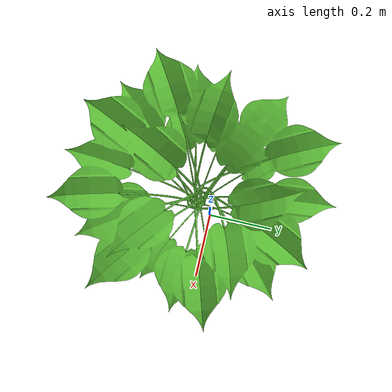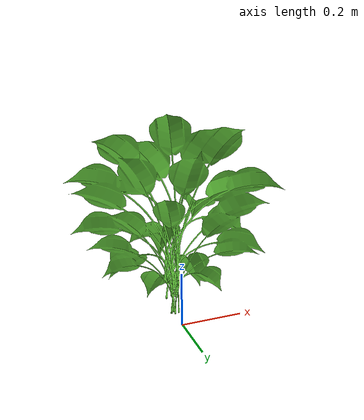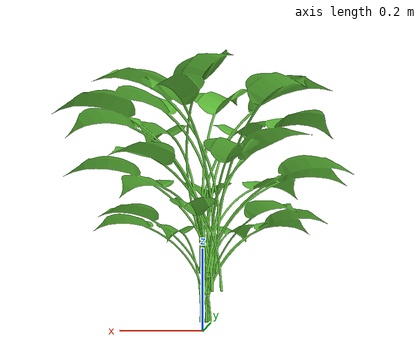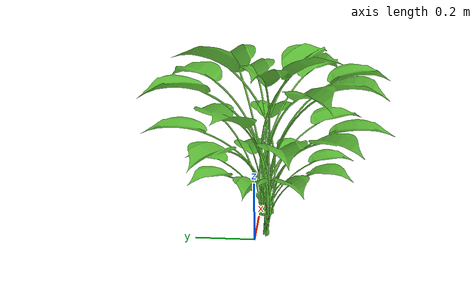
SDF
<?xml version='1.0'?>
<sdf version='1.6'>
  <model name='plant_1_single'>
    <link name='link_29'>
      <pose frame=''>-0.010565 -0.019137 0.004813 0 -0 1.12457</pose>
       <visual name='visual'>
        <pose frame=''>0 0 0 0 -0 0</pose>
        <geometry>
          <mesh>
            <uri>model://plant_1/meshes/leaf.dae</uri>
            <scale>1 1 1</scale>
          </mesh>
        </geometry>
        <material>
          <lighting>1</lighting>
          <ambient>0.36 0.737 0.211 1</ambient>
          <diffuse>0.36 0.737 0.211 1</diffuse>
          <specular>0.01 0.01 0.01 1</specular>
          <emissive>0 0 0 1</emissive>
          <shader type='vertex'>
            <normal_map>__default__</normal_map>
          </shader>
        </material>
        <cast_shadows>1</cast_shadows>
        <transparency>0</transparency>
      </visual>
      <collision name='collision'>
        <laser_retro>0</laser_retro>
        <max_contacts>10</max_contacts>
        <pose frame=''>0 0 0 0 -0 0</pose>
        <geometry>
          <mesh>
            <uri>model://plant_1/meshes/leaf.dae</uri>
            <scale>1 1 1</scale>
          </mesh>
        </geometry>
      </collision>
    </link>

    <static>1</static>
    <allow_auto_disable>1</allow_auto_disable>
  </model>
</sdf>
